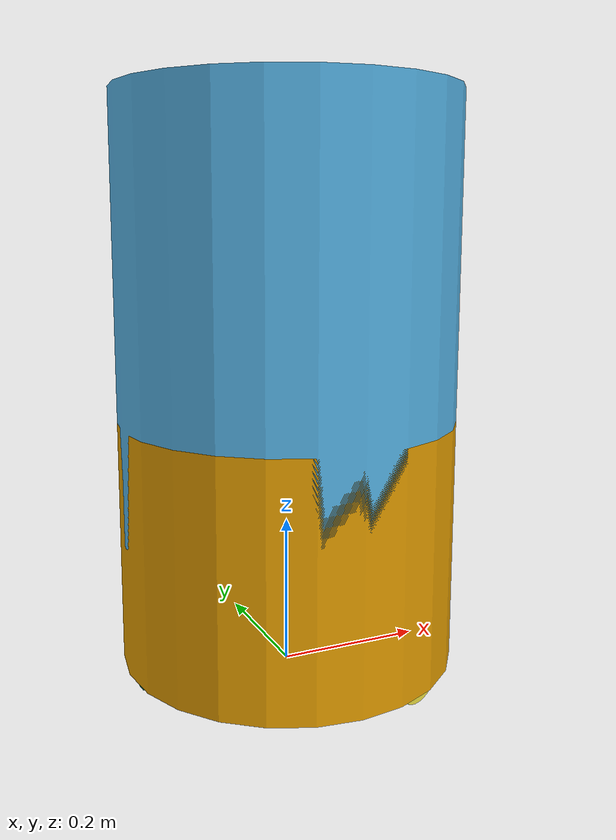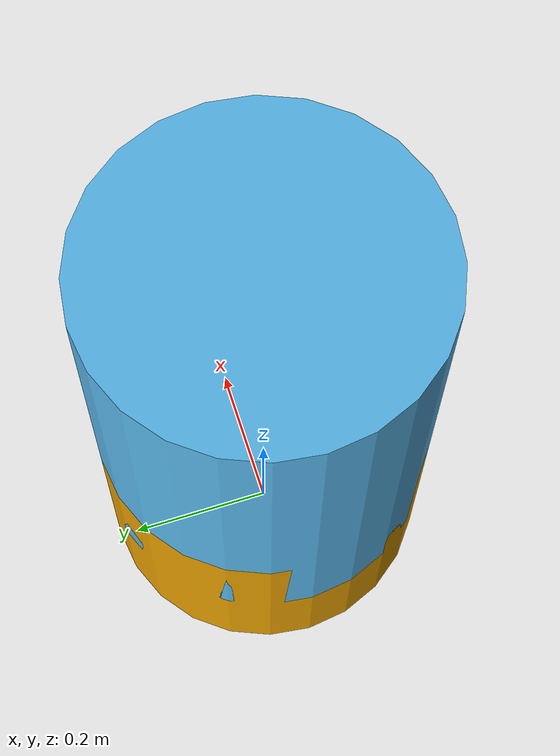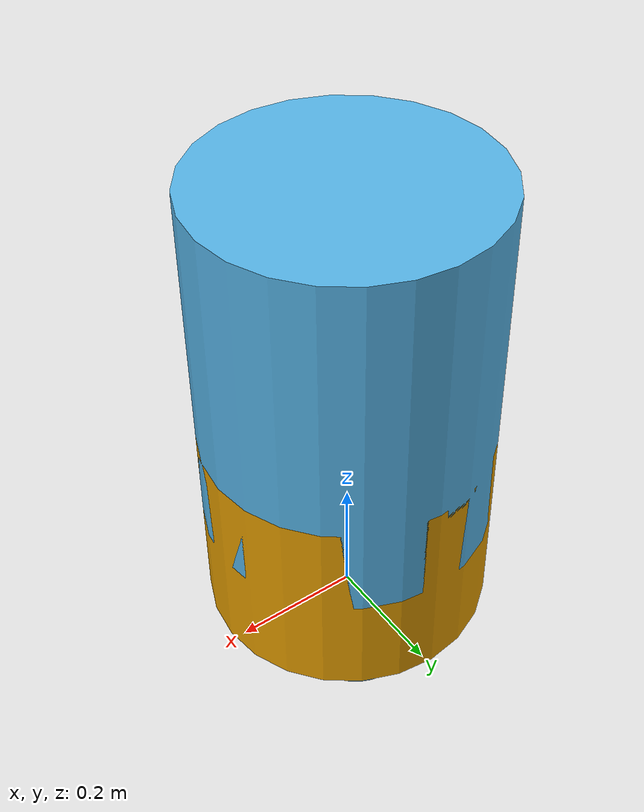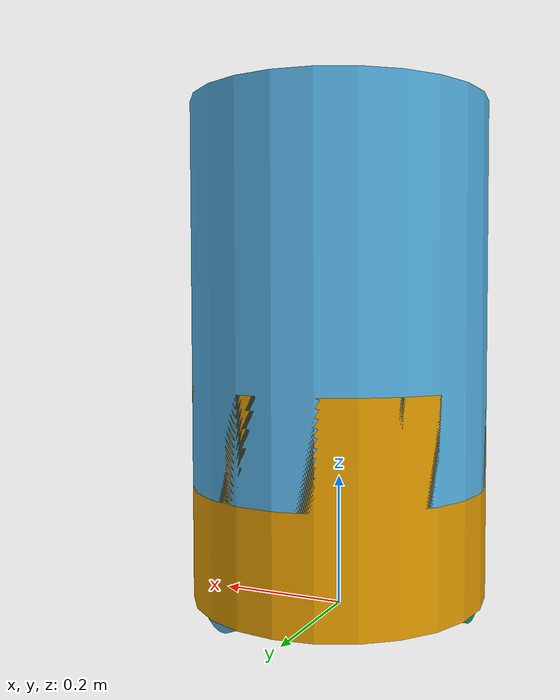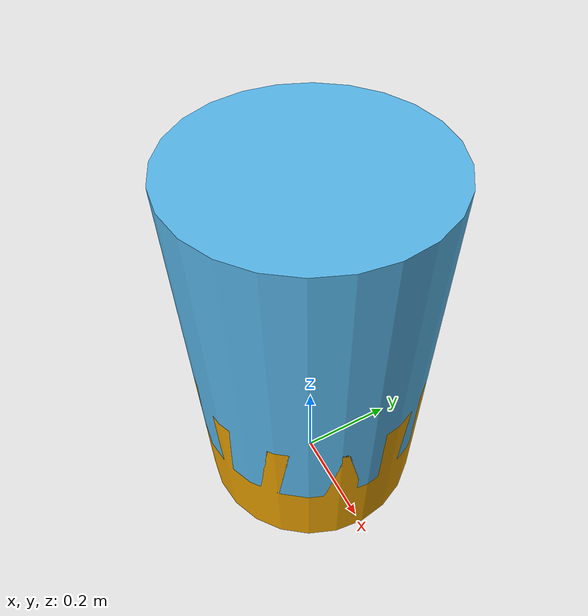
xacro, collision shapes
<?xml version="1.0"?>
<robot xmlns:xacro="http://www.ros.org/wiki/xacro" name="robotino3">
  <xacro:include filename="robotino3.urdf.xacro"/>
  <xacro:include filename="modules/tower_with_segments.urdf.xacro"/>

  <xacro:tower_with_segments parent="base_link">
    <origin xyz="0 0 0" rpy="0 0 ${radians(90)}"/>
  </xacro:tower_with_segments>
</robot>

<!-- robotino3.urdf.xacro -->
<robot xmlns:xacro="http://www.ros.org/wiki/xacro" name="robotino3">
  <xacro:include filename="robotino3/robotino3_base.urdf.xacro"/>
  <xacro:include filename="robotino3/omniwheel.urdf.xacro"/>
  <xacro:include filename="sensors/range_sensors_array.urdf.xacro"/>
  <xacro:include filename="sensors/hokuyo_laser_range_finder.urdf.xacro"/>
  <xacro:include filename="sensors/logitech_c920.urdf.xacro"/>

  <xacro:property name="base_radius" value="0.225"/>
  <xacro:robotino3_base/>

  <xacro:omniwheel name="wheel0" angle="${radians(60)}" parent="base_link"/>
  <xacro:omniwheel name="wheel1" angle="${radians(180)}" parent="base_link"/>
  <xacro:omniwheel name="wheel2" angle="${radians(300)}" parent="base_link"/>

  <xacro:range_sensors_array parent="base_link" base_radius="${base_radius}"/>

  <xacro:laser_range_finder parent="base_link">
    <origin xyz="0.091 0 0.1915" rpy="0 0 0"/>
  </xacro:laser_range_finder>

  <xacro:logitech_c920 parent="base_link">
    <origin xyz="0.12 0 0.304" rpy="0 0 0"/>
  </xacro:logitech_c920>
</robot>

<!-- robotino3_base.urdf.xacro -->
<robot xmlns:xacro="http://www.ros.org/wiki/xacro">
  <xacro:macro name="robotino3_base">
    <xacro:property name="base_radius" value="0.225"/>
    <xacro:property name="base_height" value="0.325"/>
    <xacro:property name="base_mass" value="21.4"/> <!-- with 2 accumulators -->
    <xacro:property name="base_clearance" value="0.019"/>
    <link name="base_link">
        <visual>
        <origin xyz="0 0 0.035" rpy="0 0 ${radians(90)}"/>
        <geometry>
            <mesh filename="package://robotino_description/meshes/robotino3/robotino3_base.dae" scale="0.01 0.01 0.01"/>
        </geometry>
        </visual>
        <collision>
        <origin xyz="0 0 ${base_height/2 + base_clearance}" rpy="0 0 0"/>
        <geometry>
            <cylinder length="${base_height}" radius="${base_radius}"/>
        </geometry>
        </collision>
        <inertial>
        <origin xyz="0 0 ${base_height/2 + base_clearance}" rpy="0 0 ${radians(90)}"/>
        <mass value="${base_mass}"/>
        <inertia ixx="${base_mass*(3*base_radius**2 + base_height**2)/12}" ixy="0.0" ixz="0.0"
                iyy="${base_mass*(3*base_radius**2 + base_height**2)/12}" iyz="0.0"
                izz="${(base_mass * base_radius**2)/2}"/>
        </inertial>
    </link>
  </xacro:macro>
</robot>

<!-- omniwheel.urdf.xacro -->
<robot xmlns:xacro="http://www.ros.org/wiki/xacro">
  <xacro:macro name="omniwheel" params="name angle parent">
    <xacro:property name="wheel_radius" value="0.0625"/>
    <xacro:property name="wheel_thickness" value="0.062"/>
    <xacro:property name="wheel_mass" value="0.485"/>
    <xacro:property name="wheel_distance" value="0.1811"/>
    <link name="${name}_link">
      <visual>
        <origin xyz="0 0 0" rpy="0 0 0"/>
        <geometry>
          <mesh filename="package://robotino_description/meshes/robotino3/omniwheel_rotacaster_r3_1258_85.dae" scale="0.01 0.01 0.01"/>
        </geometry>
      </visual>
      <collision>
        <origin xyz="0 0 0" rpy="${radians(90)} 0 0"/>
        <geometry>
          <cylinder length="${wheel_thickness}" radius="${wheel_radius}"/>
        </geometry>
      </collision>
      <inertial>
        <mass value="${wheel_mass}"/>
        <inertia ixx="${wheel_mass*(3*wheel_radius**2 + wheel_thickness**2)/12}" ixy="0.0" ixz="0.0"
                iyy="${(wheel_mass * wheel_radius**2)/2}" iyz="0.0"
                izz="${wheel_mass*(3*wheel_radius**2 + wheel_thickness**2)/12}"/>
      </inertial>
    </link>

    <joint name="${name}_joint" type="continuous">
      <parent link="${parent}"/>
      <child link="${name}_link"/>
      <origin xyz="${wheel_distance * cos(angle)} ${wheel_distance * sin(angle)} ${wheel_radius}" rpy="0 0 ${angle + radians(90)}"/>
      <axis xyz="0 1 0" rpy="0 0 0"/>
    </joint>
  </xacro:macro>
</robot>

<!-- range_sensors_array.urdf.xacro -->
<robot xmlns:xacro="http://www.ros.org/wiki/xacro">
  <xacro:include filename="range_sensor.urdf.xacro"/>

  <xacro:macro name="range_sensors_array" params="parent base_radius">
    <xacro:property name="sensor_delta_angle" value="${radians(40)}"/>

    <xacro:range_sensor name="ir0" angle="0" base_radius="${base_radius}" parent="${parent}"/>
    <xacro:range_sensor name="ir1" angle="${1*sensor_delta_angle}" base_radius="${base_radius}" parent="${parent}"/>
    <xacro:range_sensor name="ir2" angle="${2*sensor_delta_angle}" base_radius="${base_radius}" parent="${parent}"/>
    <xacro:range_sensor name="ir3" angle="${3*sensor_delta_angle}" base_radius="${base_radius}" parent="${parent}"/>
    <xacro:range_sensor name="ir4" angle="${4*sensor_delta_angle}" base_radius="${base_radius}" parent="${parent}"/>
    <xacro:range_sensor name="ir5" angle="${5*sensor_delta_angle}" base_radius="${base_radius}" parent="${parent}"/>
    <xacro:range_sensor name="ir6" angle="${6*sensor_delta_angle}" base_radius="${base_radius}" parent="${parent}"/>
    <xacro:range_sensor name="ir7" angle="${7*sensor_delta_angle}" base_radius="${base_radius}" parent="${parent}"/>
    <xacro:range_sensor name="ir8" angle="${8*sensor_delta_angle}" base_radius="${base_radius}" parent="${parent}"/>
  </xacro:macro>
</robot>

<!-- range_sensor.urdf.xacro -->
<robot xmlns:xacro="http://www.ros.org/wiki/xacro">
  <xacro:macro name="range_sensor" params="name angle base_radius parent">
    <link name="${name}"></link>
    <joint name="${name}_joint" type="fixed">
      <parent link="${parent}"/>
      <child link="${name}"/>
      <origin xyz="${base_radius*cos(angle)} ${base_radius*sin(angle)} 0.05" rpy="0 0 ${angle}"/>
    </joint>
  </xacro:macro>
</robot>

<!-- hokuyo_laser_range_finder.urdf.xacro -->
<robot xmlns:xacro="http://www.ros.org/wiki/xacro">
  <xacro:macro name="laser_range_finder" params="parent *origin">
    <xacro:property name="laser_height" value="0.07"/>
    <xacro:property name="laser_size" value="0.05"/>
    <link name="laser_base">
      <visual>
        <origin xyz="0 0 0" rpy="0 0 0"/>
        <geometry>
          <mesh filename="package://robotino_description/meshes/sensors/hokuyo.dae" scale="1 1 1"/>
        </geometry>
      </visual>
      <collision>
        <origin xyz="0 0 ${laser_height/2}" rpy="0 ${radians(90)} 0"/>
        <geometry>
          <box size="${laser_height} ${laser_size} ${laser_size}"/>
        </geometry>
      </collision>
    </link>
    <link name="laser_link"></link>
    <joint name="laser_link_joint" type="fixed">
      <parent link="laser_base"/>
      <child link="laser_link"/>
      <origin xyz="0 0 0.05775" rpy="0 0 0"/>
    </joint>
    <joint name="laser_joint" type="fixed">
      <parent link="${parent}"/>
      <child link="laser_base"/>
      <xacro:insert_block name="origin"/>
    </joint>
  </xacro:macro>
</robot>

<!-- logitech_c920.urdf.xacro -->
<robot xmlns:xacro="http://www.ros.org/wiki/xacro">
  <xacro:macro name="logitech_c920" params="parent *origin">
    <link name="camera_link"></link>
    <joint name="camera_joint" type="fixed">
        <parent link="${parent}"/>
        <child link="camera_link"/>
        <xacro:insert_block name="origin"/>
    </joint>

    <!-- Frame of camera images: z forward, x right, y down -->
    <link name="camera_optical_frame"></link>
    <joint name="camera_optical_joint" type="fixed">
        <parent link="camera_link"/>
        <child link="camera_optical_frame"/>
        <origin xyz="0 0 0" rpy="${-pi/2} 0 ${-pi/2}"/>
    </joint>
  </xacro:macro>
</robot>

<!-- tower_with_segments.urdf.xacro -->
<robot xmlns:xacro="http://www.ros.org/wiki/xacro">
  <xacro:macro name="tower_with_segments" params="parent *origin">
    <xacro:property name="segment_radius" value="0.225"/>
    <xacro:property name="tower_height" value="0.5775"/>
    <xacro:property name="tower_shift" value="0.1915"/>
    <link name="tower_link">
      <visual>
        <origin xyz="0 0 0" rpy="0 0 0"/>
        <geometry>
          <mesh filename="file://$(find robotino_description)/meshes/modules/tower_with_segments.dae" scale="0.01 0.01 0.01"/>
        </geometry>
      </visual>
      <collision>
        <origin xyz="0 0 ${tower_height/2 + tower_shift}" rpy="0 0 0"/>
        <geometry>
          <cylinder length="${tower_height}" radius="${segment_radius}"/>
        </geometry>
      </collision>
    </link>

    <joint name="tower_joint" type="fixed">
      <parent link="${parent}"/>
      <child link="tower_link"/>
      <xacro:insert_block name="origin"/>
    </joint>
  </xacro:macro>
</robot>
